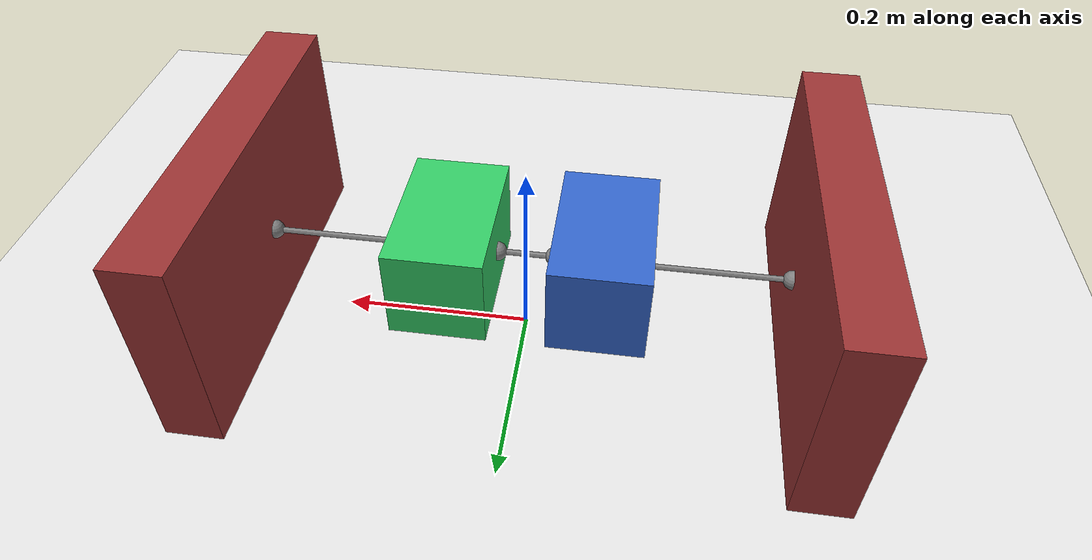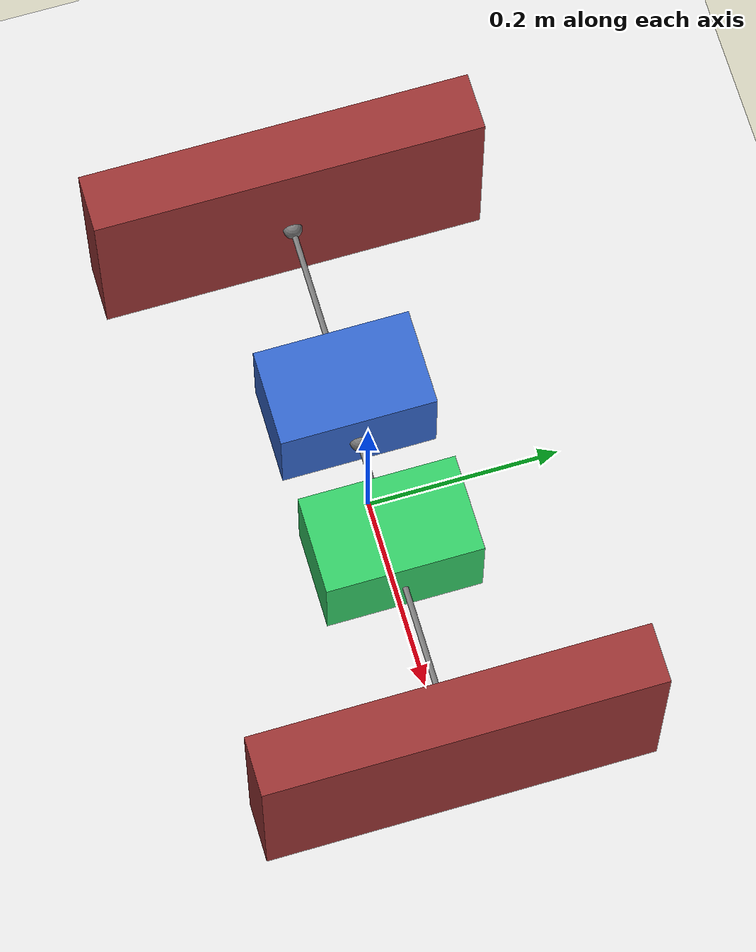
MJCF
<?xml version="1.0" ?>
<mujoco model="two_masses_three_springs">
  <compiler angle="degree" coordinate="local"/>
  <option timestep="0.001" integrator="RK4"/>

  <asset>
  </asset>

  <worldbody>
    <geom name="ground" type="plane" pos="0 0 0" size="0 0 0.01" rgba="0.9 0.9 0.9 1"/>

    <body name="wall_left" pos="-0.30 0 0.10">
      <geom name="wall_left_geom" type="box" size="0.03 0.20 0.12" rgba="0.6 0.2 0.2 1"
            contype="0" conaffinity="0"/>
      <site name="wall_left_site" pos="0.03 0 0.00" size="0.01"/>
    </body>

    <body name="wall_right" pos="0.30 0 0.10">
      <geom name="wall_right_geom" type="box" size="0.03 0.20 0.12" rgba="0.6 0.2 0.2 1"
            contype="0" conaffinity="0"/>
      <site name="wall_right_site" pos="-0.03 0 0.00" size="0.01"/>
    </body>

    <body name="mass1" pos="-0.08 0 0.10" >
      <joint name="slider1" type="slide" axis="1 0 0" damping="2"/>
      <inertial pos="0 0 0" mass="1.0" diaginertia="0.001 0.002 0.001"/>
      <geom name="mass1_geom" type="box" size="0.05 0.08 0.05" rgba="0.2 0.4 0.8 1"/>
      <site name="mass1_site" pos="0.05 0 0" size="0.01"/>
    </body>

    <body name="mass2" pos="0.08 0 0.10">
      <joint name="slider2" type="slide" axis="1 0 0" damping="2"/>
      <inertial pos="0 0 0" mass="1.0" diaginertia="0.001 0.002 0.001"/>
      <geom name="mass2_geom" type="box" size="0.05 0.08 0.05" rgba="0.2 0.8 0.4 1"/>
      <site name="mass2_site" pos="-0.05 0 0" size="0.01"/>
    </body>
  </worldbody>

  <tendon>
    <spatial name="spring_left" stiffness="300" damping="5">
      <site site="wall_left_site"/>
      <site site="mass1_site"/>
    </spatial>

    <spatial name="spring_middle" stiffness="400" damping="5">
      <site site="mass1_site"/>
      <site site="mass2_site"/>
    </spatial>

    <spatial name="spring_right" stiffness="300" damping="5">
      <site site="mass2_site"/>
      <site site="wall_right_site"/>
    </spatial>
  </tendon>

  <visual>
    <map znear="0.01"/>
  </visual>

  <sensor>
    <jointpos joint="slider1" name="x1"/>
    <jointvel joint="slider1" name="v1"/>
    <jointpos joint="slider2" name="x2"/>
    <jointvel joint="slider2" name="v2"/>
  </sensor>
</mujoco>
